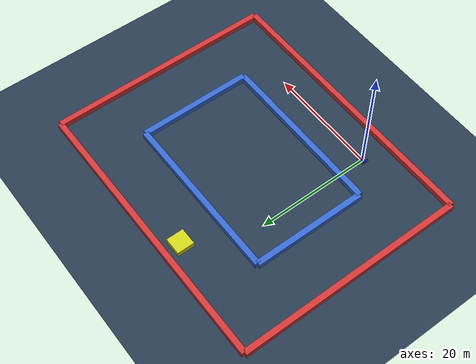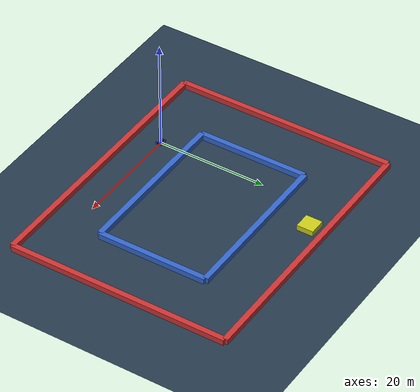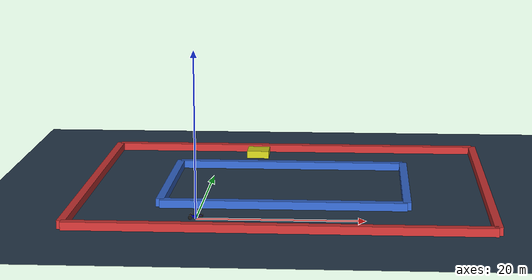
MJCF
<mujoco>
    <compiler angle="radian"/>
    <option timestep="0.005" gravity="0 0 -9.81"/>

    <asset>
        <texture type="skybox" builtin="gradient" rgb1="0.3 0.5 0.7" rgb2="0 0 0" width="512" height="512"/>
        <texture name="texplane" type="2d" builtin="checker" rgb1=".2 .3 .4" rgb2=".1 0.15 0.2" width="512" height="512" mark="cross" markrgb=".8 .8 .8"/>
        <material name="matplane" reflectance="0.3" texture="texplane" texrepeat="1 1" texuniform="true"/>
    </asset>

    <worldbody>
        <light directional="true" diffuse=".8 .8 .8" specular=".2 .2 .2" pos="0 0 5" dir="0 0 -1"/>
        <geom name="floor" type="plane" pos="10 15 0" size="50 50 0.1" material="matplane" friction="1.0 0.005 0.0001"/>

        <geom name="out_south" type="box" pos="10 -5 0.5" size="25 0.5 0.5" rgba="0.8 0.2 0.2 1"/>
        <geom name="out_north" type="box" pos="10 35 0.5" size="25 0.5 0.5" rgba="0.8 0.2 0.2 1"/>
        <geom name="out_west" type="box" pos="-15 15 0.5" size="0.5 20 0.5" rgba="0.8 0.2 0.2 1"/>
        <geom name="out_east" type="box" pos="35 15 0.5" size="0.5 20 0.5" rgba="0.8 0.2 0.2 1"/>

        <geom name="in_south" type="box" pos="10 5 0.5" size="15 0.5 0.5" rgba="0.2 0.4 0.8 1"/>
        <geom name="in_north" type="box" pos="10 25 0.5" size="15 0.5 0.5" rgba="0.2 0.4 0.8 1"/>
        <geom name="in_west" type="box" pos="-5 15 0.5" size="0.5 10 0.5" rgba="0.2 0.4 0.8 1"/>
        <geom name="in_east" type="box" pos="25 15 0.5" size="0.5 10 0.5" rgba="0.2 0.4 0.8 1"/>

        <geom name="debris_1" type="box" pos="5 32 0.5" size="1.5 1.5 0.5" rgba="0.8 0.8 0.1 1"/>

        <body name="base_link" pos="0 0 0.3">
            <freejoint/>
            <geom type="box" size="0.75 0.2 0.1" rgba="0 0 0.8 1" mass="200"/>

            <camera name="main_camera" pos="0 0 1" euler="1.6 4.7 0"/>

            <site name="lidar_mount" pos="0 0 0.4" size="0.05" rgba="1 0 0 1"/>

            <body name="rl_wheel" pos="-0.6 0.45 0">
                <joint name="rl_wheel_joint" type="hinge" axis="0 1 0" damping="0.05"/>
                <geom type="cylinder" size="0.23 0.1" rgba="0.1 0.1 0.1 1" mass="5" euler="1.5708 0 0" friction="1.5 0.01 0.001"/>
            </body>

            <body name="rr_wheel" pos="-0.6 -0.45 0">
                <joint name="rr_wheel_joint" type="hinge" axis="0 1 0" damping="0.05"/>
                <geom type="cylinder" size="0.23 0.1" rgba="0.1 0.1 0.1 1" mass="5" euler="1.5708 0 0" friction="1.5 0.01 0.001"/>
            </body>

            <body name="fl_steer_hinge" pos="0.6 0.45 0">
                <joint name="fl_steer_joint" type="hinge" axis="0 0 1" range="-0.75 0.75" damping="0.5"/>
                <geom type="box" size="0.01 0.01 0.01" mass="1" rgba="0 0 0 0"/>

                <body name="fl_wheel" pos="0 0 0">
                    <joint name="fl_wheel_joint" type="hinge" axis="0 1 0" damping="0.05"/>
                    <geom type="cylinder" size="0.23 0.1" rgba="0.1 0.1 0.1 1" mass="5" euler="1.5708 0 0" friction="1.5 0.01 0.001"/>
                </body>
            </body>

            <body name="fr_steer_hinge" pos="0.6 -0.45 0">
                <joint name="fr_steer_joint" type="hinge" axis="0 0 1" range="-0.75 0.75" damping="0.5"/>
                <geom type="box" size="0.01 0.01 0.01" mass="1" rgba="0 0 0 0"/>

                <body name="fr_wheel" pos="0 0 0">
                    <joint name="fr_wheel_joint" type="hinge" axis="0 1 0" damping="0.05"/>
                    <geom type="cylinder" size="0.23 0.1" rgba="0.1 0.1 0.1 1" mass="5" euler="1.5708 0 0" friction="1.5 0.01 0.001"/>
                </body>
            </body>
        </body>
    </worldbody>
    <sensor>
        <rangefinder name="lidar" site="lidar_mount"/>
    </sensor>
</mujoco>
